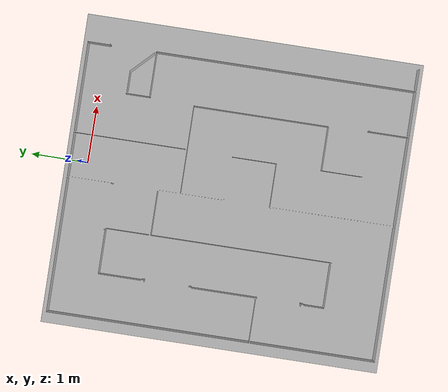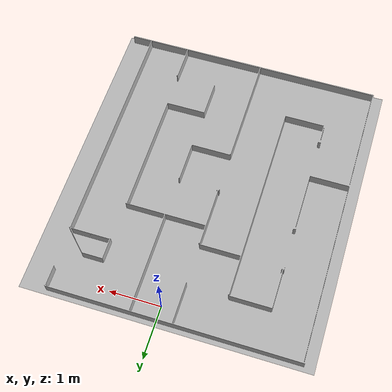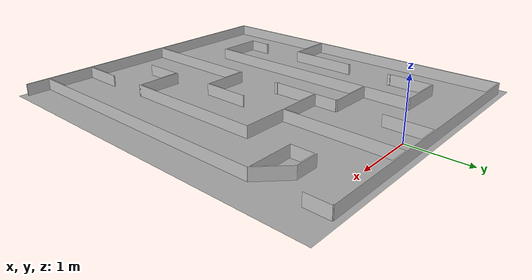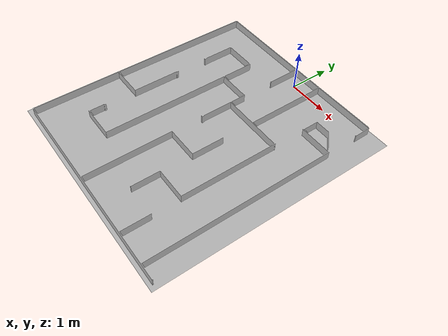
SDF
<?xml version="1.0" encoding="utf-8"?>
<sdf version="1.4">
  <world name="default">
    <gui>
      <camera name="default_camera">
        <pose>0.0 -2.6 5.5 0.0 1.569945 0.0</pose>
      </camera>
    </gui>

    <!-- A global light source -->
    <include>
      <uri>model://sun</uri>
    </include>

    <light name='user_point_light_1' type='point'>
      <pose frame=''>0.0 -3.0 2 0 0 0</pose>
      <diffuse>0.3 0.3 0.3 1</diffuse>
      <specular>0.1 0.1 0.1 1</specular>
      <attenuation>
        <range>20</range>
        <constant>0.5</constant>
        <linear>0.01</linear>
        <quadratic>0.001</quadratic>
      </attenuation>
      <cast_shadows>0</cast_shadows>
      <direction>0 0 -1</direction>
      <spot>
        <inner_angle>0.1</inner_angle>
        <outer_angle>0.5</outer_angle>
        <falloff>1.2</falloff>
      </spot>
    </light>
    <include>
      <uri>model://models/playroom_large</uri>
      <pose>0 0 0 0 0 0</pose>
      <name>playroom</name>
    </include>

    <physics type="ode">
      <real_time_update_rate>1000.0</real_time_update_rate>
      <max_step_size>0.001</max_step_size>
      <real_time_factor>1</real_time_factor>
      <ode>
        <solver>
          <type>quick</type>
          <iters>150</iters>
          <precon_iters>0</precon_iters>
          <sor>1.400000</sor>
          <use_dynamic_moi_rescaling>1</use_dynamic_moi_rescaling>
        </solver>
        <constraints>
          <cfm>0.00001</cfm>
          <erp>0.2</erp>
          <contact_max_correcting_vel>2000.000000</contact_max_correcting_vel>
          <contact_surface_layer>0.01000</contact_surface_layer>
        </constraints>
      </ode>
    </physics>
    <scene>
        <ambient>0.4 0.4 0.4 1</ambient>
        <background>0.7 0.7 0.7 1</background>
        <shadows>true</shadows>
    </scene>
  </world>
</sdf>

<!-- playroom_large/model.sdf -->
<sdf version='1.4'>
  <model name="mazeroom_long">
    <link name="link">
      <collision name="collision">
        <geometry>
          <mesh>
            <uri>model://meshes/mazeroom_large.dae</uri>
          </mesh>
        </geometry>
      </collision>
      <visual name="visual">
        <geometry>
          <mesh>
            <uri>model://meshes/mazeroom_large.dae</uri>
          </mesh>
        </geometry>
      </visual>
    </link>
    <static>1</static>
  </model>
</sdf>
